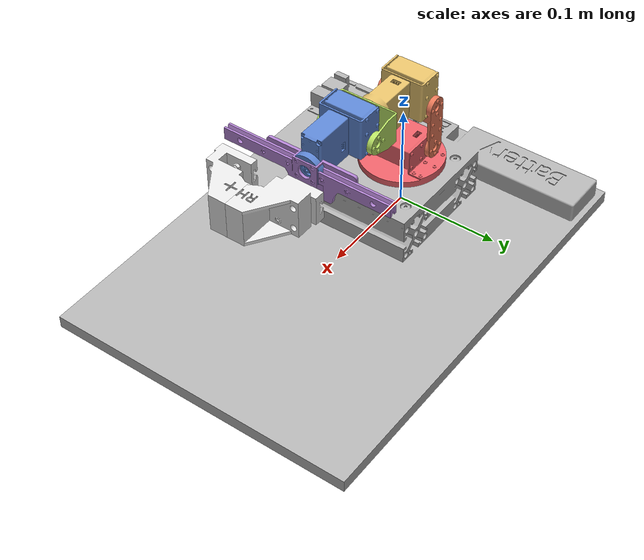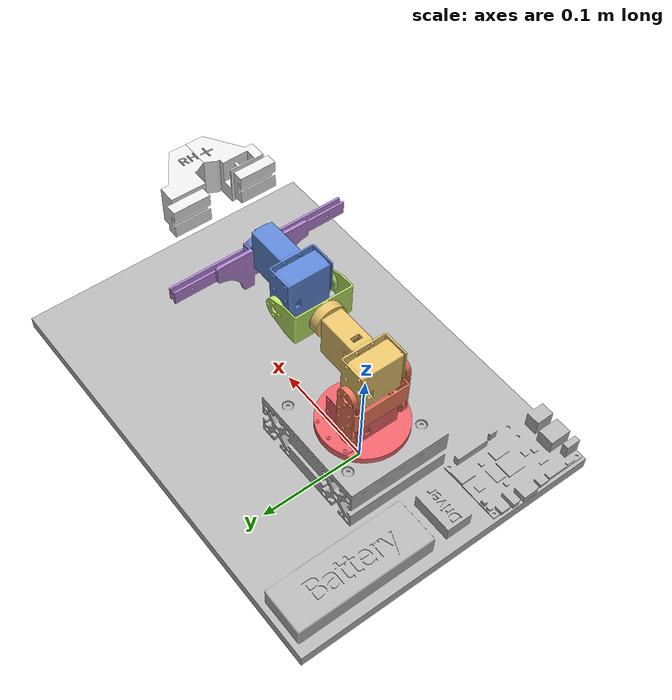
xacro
<?xml version="1.0" ?>
<robot name="rh_plus_7_axis_robot_arm"
  xmlns:xacro="http://www.ros.org/wiki/xacro">

  <xacro:include filename="$(find rh_plus_7_axis_robot_arm_description)/urdf/materials.xacro" />
  <xacro:include filename="$(find rh_plus_7_axis_robot_arm_description)/urdf/rh_plus_7_axis_robot_arm.trans" />
  <xacro:include filename="$(find rh_plus_7_axis_robot_arm_description)/urdf/rh_plus_7_axis_robot_arm.gazebo" />
  <link name="base_link">
    <visual>
      <origin xyz="0 0 0" rpy="0 0 0"/>
      <geometry>
        <mesh filename="file://$(find rh_plus_7_axis_robot_arm_description)/meshes/base_link.stl" scale="0.001 0.001 0.001"/>
      </geometry>
      <material name="silver"/>
    </visual>
    <collision>
      <origin xyz="0 0 0" rpy="0 0 0"/>
      <geometry>
        <mesh filename="file://$(find rh_plus_7_axis_robot_arm_description)/meshes/base_link.stl" scale="0.001 0.001 0.001"/>
      </geometry>
    </collision>
  </link>

  <link name="link1">
    <inertial>
      <origin xyz="0.000274 0.000213 0.012784" rpy="0 0 0"/>
      <mass value="0.154354"/>
      <inertia ixx="0.000060621" iyy="0.000053129" izz="0.000086923" ixy="0.000000545" iyz="0.000000098" ixz="-0.000000208"/>
    </inertial>
    <visual>
      <origin xyz="0 0 0" rpy="0 0 0"/>
      <geometry>
        <mesh filename="file://$(find rh_plus_7_axis_robot_arm_description)/meshes/link1.stl" scale="0.001 0.001 0.001"/>
      </geometry>
      <material name="red"/>
    </visual>
    <collision>
      <origin xyz="0 0 0" rpy="0 0 0"/>
      <geometry>
        <mesh filename="file://$(find rh_plus_7_axis_robot_arm_description)/meshes/link1.stl" scale="0.001 0.001 0.001"/>
      </geometry>
    </collision>
  </link>

  <link name="link2">
    <inertial>
      <origin xyz="-0.001506 0.025111 0.022651" rpy="0 0 0"/>
      <mass value="0.033079"/>
      <inertia ixx="0.000032298" iyy="0.000012370" izz="0.000022548" ixy="0.000000004" iyz="0.000000000" ixz="0.000000021"/>
    </inertial>
    <visual>
      <origin xyz="0 0 0" rpy="0 0 0"/>
      <geometry>
        <mesh filename="file://$(find rh_plus_7_axis_robot_arm_description)/meshes/link2.stl" scale="0.001 0.001 0.001"/>
      </geometry>
      <material name="orange"/>
    </visual>
    <collision>
      <origin xyz="0 0 0" rpy="0 0 0"/>
      <geometry>
        <mesh filename="file://$(find rh_plus_7_axis_robot_arm_description)/meshes/link2.stl" scale="0.001 0.001 0.001"/>
      </geometry>
    </collision>
  </link>

  <link name="link3">
    <inertial>
      <origin xyz="0.019595 0.025310 0.010935" rpy="0 0 0"/>
      <mass value="0.150467"/>
      <inertia ixx="0.000036924" iyy="0.000089490" izz="0.000084428" ixy="-0.000000352" iyz="-0.000000113" ixz="0.000003249"/>
    </inertial>
    <visual>
      <origin xyz="0 0 0" rpy="0 0 0"/>
      <geometry>
        <mesh filename="file://$(find rh_plus_7_axis_robot_arm_description)/meshes/link3.stl" scale="0.001 0.001 0.001"/>
      </geometry>
      <material name="yellow"/>
    </visual>
    <collision>
      <origin xyz="0 0 0" rpy="0 0 0"/>
      <geometry>
        <mesh filename="file://$(find rh_plus_7_axis_robot_arm_description)/meshes/link3.stl" scale="0.001 0.001 0.001"/>
      </geometry>
    </collision>
  </link>

  <link name="link4">
    <inertial>
      <origin xyz="0.014885 -0.000052 0.000000" rpy="0 0 0"/>
      <mass value="0.025123"/>
      <inertia ixx="0.000013429" iyy="0.000005701" izz="0.000016678" ixy="0.000000020" iyz="0.000000000" ixz="0.000000000"/>
    </inertial>
    <visual>
      <origin xyz="0 0 0" rpy="0 0 0"/>
      <geometry>
        <mesh filename="file://$(find rh_plus_7_axis_robot_arm_description)/meshes/link4.stl" scale="0.001 0.001 0.001"/>
      </geometry>
      <material name="green"/>
    </visual>
    <collision>
      <origin xyz="0 0 0" rpy="0 0 0"/>
      <geometry>
        <mesh filename="file://$(find rh_plus_7_axis_robot_arm_description)/meshes/link4.stl" scale="0.001 0.001 0.001"/>
      </geometry>
    </collision>
  </link>

  <link name="link5">
    <inertial>
      <origin xyz="0.019458 0.025309 0.009509" rpy="0 0 0"/>
      <mass value="0.149466"/>
      <inertia ixx="0.000036606" iyy="0.000088710" izz="0.000083835" ixy="-0.000000349" iyz="-0.000000089" ixz="0.000005117"/>
    </inertial>
    <visual>
      <origin xyz="0 0 0" rpy="0 0 0"/>
      <geometry>
        <mesh filename="file://$(find rh_plus_7_axis_robot_arm_description)/meshes/link5.stl" scale="0.001 0.001 0.001"/>
      </geometry>
      <material name="blue"/>
    </visual>
    <collision>
      <origin xyz="0 0 0" rpy="0 0 0"/>
      <geometry>
        <mesh filename="file://$(find rh_plus_7_axis_robot_arm_description)/meshes/link5.stl" scale="0.001 0.001 0.001"/>
      </geometry>
    </collision>
  </link>

  <link name="gripper_base">
    <inertial>
      <origin xyz="0.037975 -0.000001 0.015436" rpy="0 0 0"/>
      <mass value="0.226766"/>
      <inertia ixx="0.000315358" iyy="0.000079905" izz="0.000337569" ixy="0.000000004" iyz="0.000001911" ixz="-0.000014745"/>
    </inertial>
    <visual>
      <origin xyz="0 0 0" rpy="0 0 0"/>
      <geometry>
        <mesh filename="file://$(find rh_plus_7_axis_robot_arm_description)/meshes/gripper_base.stl" scale="0.001 0.001 0.001"/>
      </geometry>
      <material name="purple"/>
    </visual>
    <collision>
      <origin xyz="0 0 0" rpy="0 0 0"/>
      <geometry>
        <mesh filename="file://$(find rh_plus_7_axis_robot_arm_description)/meshes/gripper_base.stl" scale="0.001 0.001 0.001"/>
      </geometry>
    </collision>
  </link>

  <link name="gripper_hand_left">
    <inertial>
      <origin xyz="-0.026669 -0.019178 -0.000713" rpy="0 0 0"/>
      <mass value="0.0043545"/>
      <inertia ixx="0.000011961" iyy="0.000013457" izz="0.000015761" ixy="-0.000005644" iyz="-0.000000206" ixz="-0.000000620"/>
    </inertial>
    <visual>
      <origin xyz="0 0 0" rpy="0 0 0"/>
      <geometry>
        <mesh filename="file://$(find rh_plus_7_axis_robot_arm_description)/meshes/gripper_hand_left.stl" scale="0.001 0.001 0.001"/>
      </geometry>
      <material name="white"/>
    </visual>
    <collision>
      <origin xyz="0 0 0" rpy="0 0 0"/>
      <geometry>
        <mesh filename="file://$(find rh_plus_7_axis_robot_arm_description)/meshes/gripper_hand_left.stl" scale="0.001 0.001 0.001"/>
      </geometry>
    </collision>
  </link>

  <link name="gripper_hand_right">
    <inertial>
      <origin xyz="-0.026669 0.019178 0.000713" rpy="0 0 0"/>
      <mass value="0.0043545"/>
      <inertia ixx="0.000011961" iyy="0.000013457" izz="0.000015761" ixy="0.000005644" iyz="0.000000206" ixz="0.000000620"/>
    </inertial>
    <visual>
      <origin xyz="0 0 0" rpy="0 0 0"/>
      <geometry>
        <mesh filename="file://$(find rh_plus_7_axis_robot_arm_description)/meshes/gripper_hand_right.stl" scale="0.001 0.001 0.001"/>
      </geometry>
      <material name="white"/>
    </visual>
    <collision>
      <origin xyz="0 0 0" rpy="0 0 0"/>
      <geometry>
        <mesh filename="file://$(find rh_plus_7_axis_robot_arm_description)/meshes/gripper_hand_right.stl" scale="0.001 0.001 0.001"/>
      </geometry>
    </collision>
  </link>

  <joint name="revolute_1" type="revolute">
    <origin xyz="0.0 -0.000293 0.045671" rpy="0 0 0"/>
    <parent link="base_link"/>
    <child link="link1"/>
    <axis xyz="0.0 0.0 1.0"/>
    <limit upper="2.094395" lower="-2.094395" effort="100" velocity="5.8178"/>
  </joint>

  <joint name="revolute_2" type="revolute">
    <origin xyz="-0.01005 -0.025341 0.021922" rpy="0 0 0"/>
    <parent link="link1"/>
    <child link="link2"/>
    <axis xyz="0.0 -1.0 0.0"/>
    <limit upper="1.570796" lower="-1.570796" effort="100" velocity="5.8178"/>
  </joint>

  <joint name="revolute_3" type="revolute">
    <origin xyz="0.0 0.000163 0.045" rpy="0 0 0"/>
    <parent link="link2"/>
    <child link="link3"/>
    <axis xyz="0.0 1.0 0.0"/>
    <limit upper="1.570796" lower="-1.658063" effort="100" velocity="5.8178"/>
  </joint>

  <joint name="revolute_4" type="revolute">
    <origin xyz="0.0611 0.025492 0.020008" rpy="0 0 0"/>
    <parent link="link3"/>
    <child link="link4"/>
    <axis xyz="1.0 0.0 0.0"/>
    <limit upper="2.094395" lower="-2.094395" effort="100" velocity="5.8178"/>
  </joint>

  <joint name="revolute_5" type="revolute">
    <origin xyz="0.0299 -0.02519 0.0" rpy="0 0 0"/>
    <parent link="link4"/>
    <child link="link5"/>
    <axis xyz="0.0 1.0 0.0"/>
    <limit upper="2.094395" lower="-0.698132" effort="100" velocity="5.8178"/>
  </joint>

  <joint name="revolute_6" type="revolute">
    <origin xyz="0.0611 0.02542 0.0" rpy="0 0 0"/>
    <parent link="link5"/>
    <child link="gripper_base"/>
    <axis xyz="1.0 0.0 0.0"/>
    <limit upper="2.094395" lower="-2.094395" effort="100" velocity="5.8178"/>
  </joint>

  <joint name="slider_1" type="prismatic">
    <origin xyz="0.10160 0.0 0.020148" rpy="0 0 0"/>
    <parent link="gripper_base"/>
    <child link="gripper_hand_left"/>
    <axis xyz="0.0 -1.0 0.0"/>
    <limit upper="0.030" lower="0.0" effort="100" velocity="0.05"/>
  </joint>

  <joint name="slider_2" type="prismatic">
    <origin xyz="0.10160 0.0 0.020148" rpy="0 0 0"/>
    <parent link="gripper_base"/>
    <child link="gripper_hand_right"/>
    <axis xyz="0.0 1.0 0.0"/>
    <limit upper="0.030" lower="0.0" effort="100" velocity="0.05"/>
    <mimic joint="slider_1" multiplier="1"/>
  </joint>

  <ros2_control name="rharm_ros2_control" type="system">

    <hardware>
      <plugin>robotarm_hardware/ROBOTArmSystemHardware</plugin>
    </hardware>

    <joint name="revolute_1">
      <command_interface name="position">
        <param name="min">-2.094395</param>
        <param name="max">2.094395</param>
      </command_interface>
      <command_interface name="velocity">
        <param name="min">-5.8178</param>
        <param name="max">5.8178</param>
      </command_interface>
      <state_interface name="position">
        <param name="initial_value">0.0</param>
      </state_interface>
      <state_interface name="velocity"/>
    </joint>

    <joint name="revolute_2">
      <command_interface name="position">
        <param name="min">-1.570796</param>
        <param name="max">1.570796</param>
      </command_interface>
      <command_interface name="velocity">
        <param name="min">-5.8178</param>
        <param name="max">5.8178</param>
      </command_interface>
      <state_interface name="position">
        <param name="initial_value">0.0</param>
      </state_interface>
      <state_interface name="velocity"/>
    </joint>

    <joint name="revolute_3">
      <command_interface name="position">
        <param name="min">-1.658063</param>
        <param name="max">1.570796</param>
      </command_interface>
      <command_interface name="velocity">
        <param name="min">-5.8178</param>
        <param name="max">5.8178</param>
      </command_interface>
      <state_interface name="position">
        <param name="initial_value">0.0</param>
      </state_interface>
      <state_interface name="velocity"/>
    </joint>

    <joint name="revolute_4">
      <command_interface name="position">
        <param name="min">-2.094395</param>
        <param name="max">2.094395</param>
      </command_interface>
      <command_interface name="velocity">
        <param name="min">-5.8178</param>
        <param name="max">5.8178</param>
      </command_interface>
      <state_interface name="position">
        <param name="initial_value">0.0</param>
      </state_interface>
      <state_interface name="velocity"/>
    </joint>

    <joint name="revolute_5">
      <command_interface name="position">
        <param name="min">-0.698132</param>
        <param name="max">2.094395</param>
      </command_interface>
      <command_interface name="velocity">
        <param name="min">-5.8178</param>
        <param name="max">5.8178</param>
      </command_interface>
      <state_interface name="position">
        <param name="initial_value">0.0</param>
      </state_interface>
      <state_interface name="velocity"/>
    </joint>

    <joint name="revolute_6">
      <command_interface name="position">
        <param name="min">{-2.094395}</param>
        <param name="max">{2.094395}</param>
      </command_interface>
      <command_interface name="velocity">
        <param name="min">-5.8178</param>
        <param name="max">5.8178</param>
      </command_interface>
      <state_interface name="position">
        <param name="initial_value">0.0</param>
      </state_interface>
      <state_interface name="velocity"/>
    </joint>

    <joint name="slider_1">
      <command_interface name="position">
        <param name="min">{0}</param>
        <param name="max">{0.03}</param>
      </command_interface>
      <command_interface name="velocity">
        <param name="min">-0.05</param>
        <param name="max">0.05</param>
      </command_interface>
      <state_interface name="position">
        <param name="initial_value">0.0</param>
      </state_interface>
      <state_interface name="velocity"/>
    </joint>

  </ros2_control>

</robot>

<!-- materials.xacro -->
<robot name="rh_plus_7_axis_robot_arm" xmlns:xacro="http://www.ros.org/wiki/xacro" >

<material name="silver">
  <color rgba="0.700 0.700 0.700 1.000"/>
</material>

<material name="red">
  <color rgba="0.914 0.376 0.404 1.000"/>
</material>

<material name="orange">
  <color rgba="0.918 0.475 0.345 1.000"/>
</material>

<material name="yellow">
  <color rgba="0.894 0.753 0.416 1.000"/>
</material>

<material name="green">
  <color rgba="0.722 0.886 0.392 1.000"/>
</material>

<material name="blue">
  <color rgba="0.361 0.522 0.827 1.000"/>
</material>

<material name="pink">
  <color rgba="1.000 0.412 0.706 1.000"/>
</material>

<material name="purple">
  <color rgba="0.690 0.506 0.816 1.000"/>
</material>

<material name="white">
  <color rgba="0.900 0.900 0.900 1.000"/>
</material>

</robot>

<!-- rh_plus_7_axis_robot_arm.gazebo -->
<robot name="rh_plus_7_axis_robot_arm" xmlns:xacro="http://www.ros.org/wiki/xacro" >

<xacro:property name="body_color" value="Gazebo/Silver" />

<gazebo>
  <plugin name="control" filename="libgazebo_ros_control.so"/>
</gazebo>
<gazebo reference="base_link">
  <material>${body_color}</material>
  <mu1>0.2</mu1>
  <mu2>0.2</mu2>
  <self_collide>true</self_collide>
  <gravity>true</gravity>
</gazebo>

<gazebo reference="link1">
  <material>${body_color}</material>
  <mu1>0.2</mu1>
  <mu2>0.2</mu2>
  <self_collide>true</self_collide>
</gazebo>

<gazebo reference="link2">
  <material>${body_color}</material>
  <mu1>0.2</mu1>
  <mu2>0.2</mu2>
  <self_collide>true</self_collide>
</gazebo>

<gazebo reference="link3">
  <material>${body_color}</material>
  <mu1>0.2</mu1>
  <mu2>0.2</mu2>
  <self_collide>true</self_collide>
</gazebo>

<gazebo reference="link4">
  <material>${body_color}</material>
  <mu1>0.2</mu1>
  <mu2>0.2</mu2>
  <self_collide>true</self_collide>
</gazebo>

<gazebo reference="link5">
  <material>${body_color}</material>
  <mu1>0.2</mu1>
  <mu2>0.2</mu2>
  <self_collide>true</self_collide>
</gazebo>

<gazebo reference="gripper_base">
  <material>${body_color}</material>
  <mu1>0.2</mu1>
  <mu2>0.2</mu2>
  <self_collide>true</self_collide>
</gazebo>

<gazebo reference="gripper_middle">
  <material>${body_color}</material>
  <mu1>0.2</mu1>
  <mu2>0.2</mu2>
  <self_collide>true</self_collide>
</gazebo>

<gazebo reference="gripper_hand_left">
  <material>${body_color}</material>
  <mu1>0.2</mu1>
  <mu2>0.2</mu2>
  <self_collide>true</self_collide>
</gazebo>

<gazebo reference="gripper_hand_righ1">
  <material>${body_color}</material>
  <mu1>0.2</mu1>
  <mu2>0.2</mu2>
  <self_collide>true</self_collide>
</gazebo>

<gazebo reference="gripper_arm_left">
  <material>${body_color}</material>
  <mu1>0.2</mu1>
  <mu2>0.2</mu2>
  <self_collide>true</self_collide>
</gazebo>

<gazebo reference="gripper_arm_right">
  <material>${body_color}</material>
  <mu1>0.2</mu1>
  <mu2>0.2</mu2>
  <self_collide>true</self_collide>
</gazebo>

</robot>
